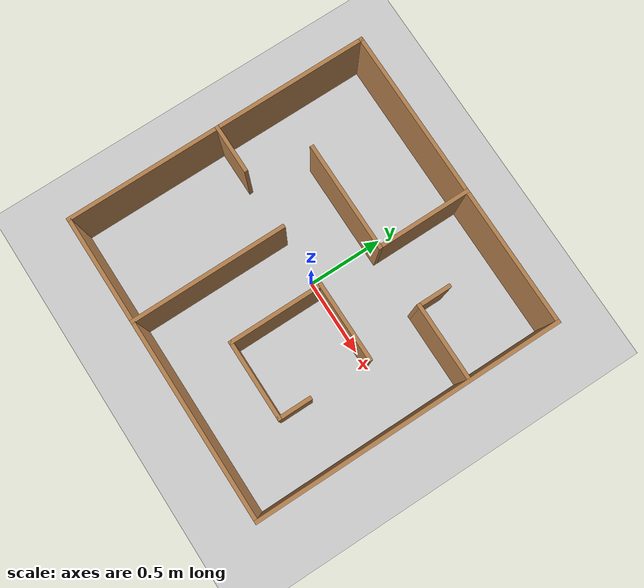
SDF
<sdf version="1.7">
 <world name="default">
  <light name="sun" type="directional">
   <pose>0 0 10 0 -0 0</pose>
   <diffuse>0.8 0.8 0.8 1</diffuse>
   <specular>0.2 0.2 0.2 1</specular>
   <attenuation>
    <range>1000</range>
    <constant>0.9</constant>
    <linear>0.01</linear>
    <quadratic>0.001</quadratic>
   </attenuation>
   <direction>-0.5 0.1 -0.9</direction>
   <spot><inner_angle>0</inner_angle><outer_angle>0</outer_angle><falloff>0</falloff></spot>
  </light>
  <model name="ground_plane">
   <static>1</static>
   <link name="link">
    <collision name="collision">
     <geometry><plane><normal>0 0 1</normal><size>100 100</size></plane></geometry>
     <surface><friction><ode><mu>100</mu><mu2>50</mu2></ode></friction></surface>
    </collision>
    <visual name="visual">
     <cast_shadows>0</cast_shadows>
     <geometry><plane><normal>0 0 1</normal><size>100 100</size></plane></geometry>
     <material>
      <script><uri>file://media/materials/scripts/gazebo.material</uri><name>Gazebo/Grey</name></script>
     </material>
    </visual>
   </link>
  </model>
  <gravity>0 0 -9.8</gravity>
  <magnetic_field>6e-06 2.3e-05 -4.2e-05</magnetic_field>
  <atmosphere type="adiabatic"/>
  <physics type="ode">
   <max_step_size>0.001</max_step_size>
   <real_time_factor>1</real_time_factor>
   <real_time_update_rate>1000</real_time_update_rate>
  </physics>
  <scene><ambient>0.4 0.4 0.4 1</ambient><background>0.7 0.7 0.7 1</background><shadows>1</shadows></scene>
  <audio><device>default</device></audio>
  <spherical_coordinates>
   <surface_model>EARTH_WGS84</surface_model>
   <latitude_deg>0</latitude_deg>
   <longitude_deg>0</longitude_deg>
   <elevation>0</elevation>
   <heading_deg>0</heading_deg>
  </spherical_coordinates>
  <model name="multirobot">
   <link name="Wall_1">
    <collision name="Wall_1_Collision">
     <geometry><box><size>2.025 0.025 0.5</size></box></geometry>
     <pose>0 0 0.25 0 -0 0</pose>
    </collision>
    <visual name="Wall_1_Visual">
     <pose>0 0 0.25 0 -0 0</pose>
     <geometry><box><size>2.025 0.025 0.5</size></box></geometry>
     <material>
      <script><uri>file://media/materials/scripts/gazebo.material</uri><name>Gazebo/Wood</name></script>
      <ambient>1 1 1 1</ambient>
     </material>
     <meta><layer>0</layer></meta>
    </visual>
    <pose>0 -1 0 0 -0 0</pose>
   </link>
   <link name="Wall_11">
    <collision name="Wall_11_Collision">
     <geometry><box><size>0.525 0.025 0.5</size></box></geometry>
     <pose>0 0 0.25 0 -0 0</pose>
    </collision>
    <visual name="Wall_11_Visual">
     <pose>0 0 0.25 0 -0 0</pose>
     <geometry><box><size>0.525 0.025 0.5</size></box></geometry>
     <material>
      <script><uri>file://media/materials/scripts/gazebo.material</uri><name>Gazebo/Wood</name></script>
      <ambient>1 1 1 1</ambient>
     </material>
     <meta><layer>0</layer></meta>
    </visual>
    <pose>0.35 -0.6 0 0 -0 0</pose>
   </link>
   <link name="Wall_13">
    <collision name="Wall_13_Collision">
     <geometry><box><size>0.225 0.025 0.5</size></box></geometry>
     <pose>0 0 0.25 0 -0 0</pose>
    </collision>
    <visual name="Wall_13_Visual">
     <pose>0 0 0.25 0 -0 0</pose>
     <geometry><box><size>0.225 0.025 0.5</size></box></geometry>
     <material>
      <script><uri>file://media/materials/scripts/gazebo.material</uri><name>Gazebo/Wood</name></script>
      <ambient>1 1 1 1</ambient>
     </material>
     <meta><layer>0</layer></meta>
    </visual>
    <pose>0.6 -0.5 0 0 -0 1.5708</pose>
   </link>
   <link name="Wall_15">
    <collision name="Wall_15_Collision">
     <geometry><box><size>0.525 0.025 0.5</size></box></geometry>
     <pose>0 0 0.25 0 -0 0</pose>
    </collision>
    <visual name="Wall_15_Visual">
     <pose>0 0 0.25 0 -0 0</pose>
     <geometry><box><size>0.525 0.025 0.5</size></box></geometry>
     <material>
      <script><uri>file://media/materials/scripts/gazebo.material</uri><name>Gazebo/Wood</name></script>
      <ambient>1 1 1 1</ambient>
     </material>
     <meta><layer>0</layer></meta>
    </visual>
    <pose>0.75 0.4 0 0 -0 3.14159</pose>
   </link>
   <link name="Wall_17">
    <collision name="Wall_17_Collision">
     <geometry><box><size>0.225 0.025 0.5</size></box></geometry>
     <pose>0 0 0.25 0 -0 0</pose>
    </collision>
    <visual name="Wall_17_Visual">
     <pose>0 0 0.25 0 -0 0</pose>
     <geometry><box><size>0.225 0.025 0.5</size></box></geometry>
     <material>
      <script><uri>file://media/materials/scripts/gazebo.material</uri><name>Gazebo/Wood</name></script>
      <ambient>1 1 1 1</ambient>
     </material>
     <meta><layer>0</layer></meta>
    </visual>
    <pose>0.5 0.5 0 0 -0 1.5708</pose>
   </link>
   <link name="Wall_19">
    <collision name="Wall_19_Collision">
     <geometry><box><size>0.325 0.025 0.5</size></box></geometry>
     <pose>0 0 0.25 0 -0 0</pose>
    </collision>
    <visual name="Wall_19_Visual">
     <pose>0 0 0.25 0 -0 0</pose>
     <geometry><box><size>0.325 0.025 0.5</size></box></geometry>
     <material>
      <script><uri>file://media/materials/scripts/gazebo.material</uri><name>Gazebo/Wood</name></script>
      <ambient>1 1 1 1</ambient>
     </material>
     <meta><layer>0</layer></meta>
    </visual>
    <pose>-0.85 0 0 0 -0 0</pose>
   </link>
   <link name="Wall_2">
    <collision name="Wall_2_Collision">
     <geometry><box><size>2.025 0.025 0.5</size></box></geometry>
     <pose>0 0 0.25 0 -0 0</pose>
    </collision>
    <visual name="Wall_2_Visual">
     <pose>0 0 0.25 0 -0 0</pose>
     <geometry><box><size>2.025 0.025 0.5</size></box></geometry>
     <material>
      <script><uri>file://media/materials/scripts/gazebo.material</uri><name>Gazebo/Wood</name></script>
      <ambient>1 1 1 1</ambient>
     </material>
     <meta><layer>0</layer></meta>
    </visual>
    <pose>1 0 0 0 -0 1.5708</pose>
   </link>
   <link name="Wall_23">
    <collision name="Wall_23_Collision">
     <geometry><box><size>1.025 0.025 0.5</size></box></geometry>
     <pose>0 0 0.25 0 -0 0</pose>
    </collision>
    <visual name="Wall_23_Visual">
     <pose>0 0 0.25 0 -0 0</pose>
     <geometry><box><size>1.025 0.025 0.5</size></box></geometry>
     <material>
      <script><uri>file://media/materials/scripts/gazebo.material</uri><name>Gazebo/Wood</name></script>
      <ambient>1 1 1 1</ambient>
     </material>
     <meta><layer>0</layer></meta>
    </visual>
    <pose>-0.3 -0.5 0 0 -0 -1.5708</pose>
   </link>
   <link name="Wall_28">
    <collision name="Wall_28_Collision">
     <geometry><box><size>0.625 0.025 0.5</size></box></geometry>
     <pose>0 0 0.25 0 -0 0</pose>
    </collision>
    <visual name="Wall_28_Visual">
     <pose>0 0 0.25 0 -0 0</pose>
     <geometry><box><size>0.625 0.025 0.5</size></box></geometry>
     <material>
      <script><uri>file://media/materials/scripts/gazebo.material</uri><name>Gazebo/Wood</name></script>
      <ambient>1 1 1 1</ambient>
     </material>
     <meta><layer>0</layer></meta>
    </visual>
    <pose>0.1 0.7 0 0 -0 -1.5708</pose>
   </link>
   <link name="Wall_3">
    <collision name="Wall_3_Collision">
     <geometry><box><size>2.025 0.025 0.5</size></box></geometry>
     <pose>0 0 0.25 0 -0 0</pose>
    </collision>
    <visual name="Wall_3_Visual">
     <pose>0 0 0.25 0 -0 0</pose>
     <geometry><box><size>2.025 0.025 0.5</size></box></geometry>
     <material>
      <script><uri>file://media/materials/scripts/gazebo.material</uri><name>Gazebo/Wood</name></script>
      <ambient>1 1 1 1</ambient>
     </material>
     <meta><layer>0</layer></meta>
    </visual>
    <pose>0 1 0 0 -0 3.14159</pose>
   </link>
   <link name="Wall_30">
    <collision name="Wall_30_Collision">
     <geometry><box><size>0.725 0.025 0.5</size></box></geometry>
     <pose>0 0 0.25 0 -0 0</pose>
    </collision>
    <visual name="Wall_30_Visual">
     <pose>0 0 0.25 0 -0 0</pose>
     <geometry><box><size>0.725 0.025 0.5</size></box></geometry>
     <material>
      <script><uri>file://media/materials/scripts/gazebo.material</uri><name>Gazebo/Wood</name></script>
      <ambient>1 1 1 1</ambient>
     </material>
     <meta><layer>0</layer></meta>
    </visual>
    <pose>-0.25 0.4 0 0 -0 3.14159</pose>
   </link>
   <link name="Wall_4">
    <collision name="Wall_4_Collision">
     <geometry><box><size>2.025 0.025 0.5</size></box></geometry>
     <pose>0 0 0.25 0 -0 0</pose>
    </collision>
    <visual name="Wall_4_Visual">
     <pose>0 0 0.25 0 -0 0</pose>
     <geometry><box><size>2.025 0.025 0.5</size></box></geometry>
     <material>
      <script><uri>file://media/materials/scripts/gazebo.material</uri><name>Gazebo/Wood</name></script>
      <ambient>1 1 1 1</ambient>
     </material>
     <meta><layer>0</layer></meta>
    </visual>
    <pose>-1 0 0 0 -0 -1.5708</pose>
   </link>
   <link name="Wall_6">
    <collision name="Wall_6_Collision">
     <geometry><box><size>0.525 0.025 0.5</size></box></geometry>
     <pose>0 0 0.25 0 -0 0</pose>
    </collision>
    <visual name="Wall_6_Visual">
     <pose>0 0 0.25 0 -0 0</pose>
     <geometry><box><size>0.525 0.025 0.5</size></box></geometry>
     <material>
      <script><uri>file://media/materials/scripts/gazebo.material</uri><name>Gazebo/Wood</name></script>
      <ambient>1 1 1 1</ambient>
     </material>
     <meta><layer>0</layer></meta>
    </visual>
    <pose>0.35 0 0 0 -0 0</pose>
   </link>
   <link name="Wall_9">
    <collision name="Wall_9_Collision">
     <geometry><box><size>0.625 0.025 0.5</size></box></geometry>
     <pose>0 0 0.25 0 -0 0</pose>
    </collision>
    <visual name="Wall_9_Visual">
     <pose>0 0 0.25 0 -0 0</pose>
     <geometry><box><size>0.625 0.025 0.5</size></box></geometry>
     <material>
      <script><uri>file://media/materials/scripts/gazebo.material</uri><name>Gazebo/Wood</name></script>
      <ambient>1 1 1 1</ambient>
     </material>
     <meta><layer>0</layer></meta>
    </visual>
    <pose>0.1 -0.3 0 0 -0 -1.5708</pose>
   </link>
   <static>1</static>
  </model>
 </world>
</sdf>
